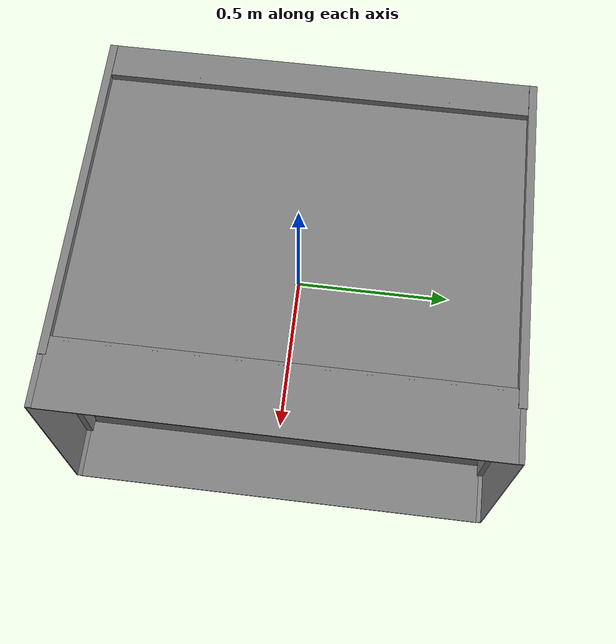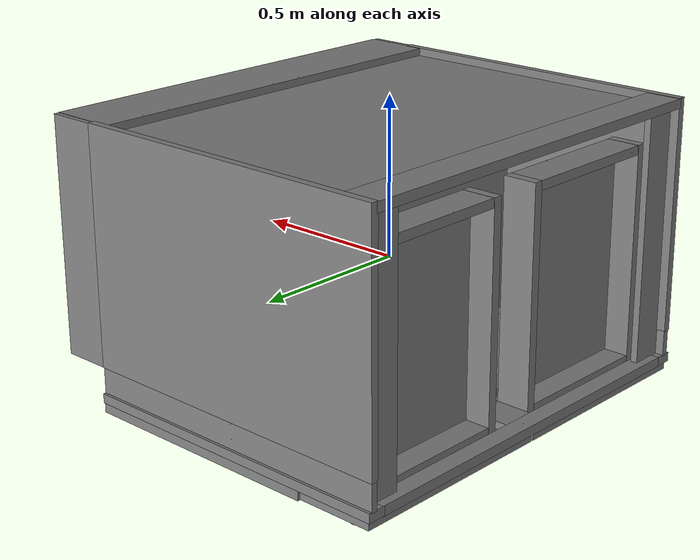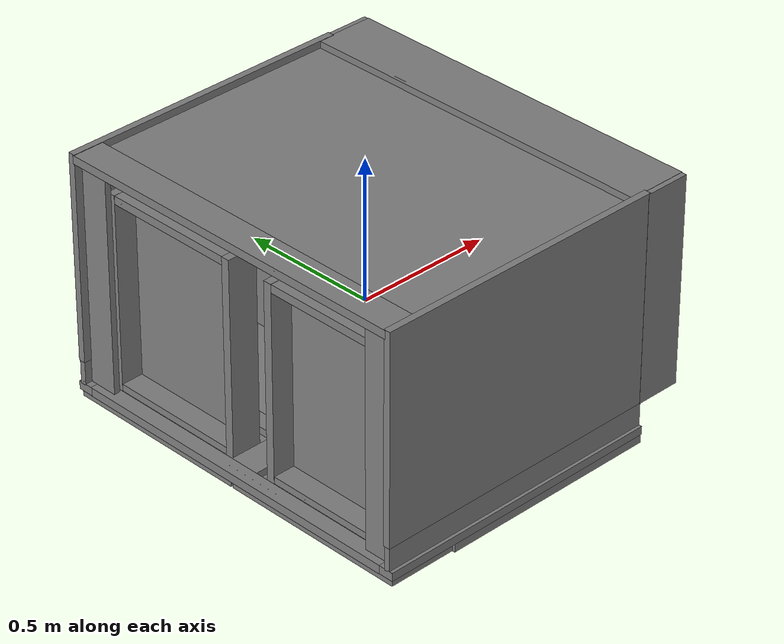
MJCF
<mujoco model="partnet_190cb7264781df604da5feafe6f1c8fc">
    <compiler angle="radian" />
    <size njmax="500" nconmax="100" />
    <asset>
        <mesh name="convex-65" file="convex-65.stl" />
        <mesh name="convex-67" file="convex-67.stl" />
        <mesh name="convex-69" file="convex-69.stl" />
        <mesh name="convex-68" file="convex-68.stl" />
        <mesh name="convex-59" file="convex-59.stl" />
        <mesh name="convex-61" file="convex-61.stl" />
        <mesh name="convex-63" file="convex-63.stl" />
        <mesh name="convex-62" file="convex-62.stl" />
        <mesh name="convex-29" file="convex-29.stl" />
        <mesh name="convex-37" file="convex-37.stl" />
        <mesh name="convex-33" file="convex-33.stl" />
        <mesh name="convex-35" file="convex-35.stl" />
        <mesh name="convex-28" file="convex-28.stl" />
        <mesh name="convex-34" file="convex-34.stl" />
        <mesh name="convex-32" file="convex-32.stl" />
        <mesh name="convex-31" file="convex-31.stl" />
        <mesh name="convex-39" file="convex-39.stl" />
        <mesh name="convex-40" file="convex-40.stl" />
        <mesh name="convex-41" file="convex-41.stl" />
        <mesh name="convex-45" file="convex-45.stl" />
        <mesh name="convex-53" file="convex-53.stl" />
        <mesh name="convex-44" file="convex-44.stl" />
        <mesh name="convex-49" file="convex-49.stl" />
        <mesh name="convex-51" file="convex-51.stl" />
        <mesh name="convex-50" file="convex-50.stl" />
        <mesh name="convex-48" file="convex-48.stl" />
        <mesh name="convex-47" file="convex-47.stl" />
        <mesh name="convex-55" file="convex-55.stl" />
        <mesh name="convex-56" file="convex-56.stl" />
        <mesh name="convex-57" file="convex-57.stl" />
        <mesh name="convex-25" file="convex-25.stl" />
        <mesh name="convex-70" file="convex-70.stl" />
        <mesh name="convex-12" file="convex-12.stl" />
        <mesh name="convex-11" file="convex-11.stl" />
        <mesh name="convex-16" file="convex-16.stl" />
        <mesh name="convex-15" file="convex-15.stl" />
        <mesh name="convex-18" file="convex-18.stl" />
        <mesh name="convex-19" file="convex-19.stl" />
        <mesh name="convex-24" file="convex-24.stl" />
        <mesh name="convex-7" file="convex-7.stl" />
        <mesh name="convex-8" file="convex-8.stl" />
        <mesh name="convex-4" file="convex-4.stl" />
        <mesh name="convex-9" file="convex-9.stl" />
        <mesh name="convex-6" file="convex-6.stl" />
        <mesh name="convex-5" file="convex-5.stl" />
        <mesh name="convex-3" file="convex-3.stl" />
        <mesh name="convex-23" file="convex-23.stl" />
        <mesh name="convex-22" file="convex-22.stl" />
        <mesh name="convex-13" file="convex-13.stl" />
        <mesh name="convex-17" file="convex-17.stl" />
        <mesh name="convex-21" file="convex-21.stl" />
        <mesh name="convex-20" file="convex-20.stl" />
    </asset>
    <worldbody>
        <geom quat="0.5 0.5 -0.5 -0.5" type="mesh" mesh="convex-25" />
        <geom quat="0.5 0.5 -0.5 -0.5" type="mesh" mesh="convex-70" />
        <geom quat="0.5 0.5 -0.5 -0.5" type="mesh" mesh="convex-12" />
        <geom quat="0.5 0.5 -0.5 -0.5" type="mesh" mesh="convex-11" />
        <geom quat="0.5 0.5 -0.5 -0.5" type="mesh" mesh="convex-16" />
        <geom quat="0.5 0.5 -0.5 -0.5" type="mesh" mesh="convex-15" />
        <geom quat="0.5 0.5 -0.5 -0.5" type="mesh" mesh="convex-18" />
        <geom quat="0.5 0.5 -0.5 -0.5" type="mesh" mesh="convex-19" />
        <geom quat="0.5 0.5 -0.5 -0.5" type="mesh" mesh="convex-24" />
        <geom quat="0.5 0.5 -0.5 -0.5" type="mesh" mesh="convex-7" />
        <geom quat="0.5 0.5 -0.5 -0.5" type="mesh" mesh="convex-8" />
        <geom quat="0.5 0.5 -0.5 -0.5" type="mesh" mesh="convex-4" />
        <geom quat="0.5 0.5 -0.5 -0.5" type="mesh" mesh="convex-9" />
        <geom quat="0.5 0.5 -0.5 -0.5" type="mesh" mesh="convex-6" />
        <geom quat="0.5 0.5 -0.5 -0.5" type="mesh" mesh="convex-5" />
        <geom quat="0.5 0.5 -0.5 -0.5" type="mesh" mesh="convex-3" />
        <geom quat="0.5 0.5 -0.5 -0.5" type="mesh" mesh="convex-23" />
        <geom quat="0.5 0.5 -0.5 -0.5" type="mesh" mesh="convex-22" />
        <geom quat="0.5 0.5 -0.5 -0.5" type="mesh" mesh="convex-13" />
        <geom quat="0.5 0.5 -0.5 -0.5" type="mesh" mesh="convex-17" />
        <geom quat="0.5 0.5 -0.5 -0.5" type="mesh" mesh="convex-21" />
        <geom quat="0.5 0.5 -0.5 -0.5" type="mesh" mesh="convex-20" />
        <body name="link_0" pos="-0.411765 -0.668161 -0.500258" quat="0.5 0.5 -0.5 -0.5">
            <inertial pos="-0.32929 0.0902366 -0.513415" quat="0.705843 -0.00566432 -0.00625225 0.708318" mass="21.4575" diaginertia="2.03334 1.16583 0.87382" />
            <joint name="joint_0" pos="0 0 0" axis="0 1 0" limited="true" range="0 1.5708" />
            <geom pos="-0.668161 0.500258 -0.411765" type="mesh" mesh="convex-65" />
            <geom pos="-0.668161 0.500258 -0.411765" type="mesh" mesh="convex-67" />
            <geom pos="-0.668161 0.500258 -0.411765" type="mesh" mesh="convex-69" />
            <geom pos="-0.668161 0.500258 -0.411765" type="mesh" mesh="convex-68" />
        </body>
        <body name="link_1" pos="-0.409826 0.681307 -0.500258" quat="0.5 0.5 -0.5 -0.5">
            <inertial pos="0.331951 0.0902366 -0.511476" quat="0.70831 0.00620442 0.00561664 0.705852" mass="21.4575" diaginertia="2.03311 1.16583 0.873593" />
            <joint name="joint_1" pos="0 0 0" axis="0 -1 0" limited="true" range="0 1.5708" />
            <geom pos="0.681307 0.500258 -0.409826" type="mesh" mesh="convex-59" />
            <geom pos="0.681307 0.500258 -0.409826" type="mesh" mesh="convex-61" />
            <geom pos="0.681307 0.500258 -0.409826" type="mesh" mesh="convex-63" />
            <geom pos="0.681307 0.500258 -0.409826" type="mesh" mesh="convex-62" />
        </body>
        <body name="link_2" pos="0.416492 -0.321637 0.407848" quat="0.5 0.5 -0.5 -0.5">
            <inertial pos="0.0190409 -0.573552 0.837077" quat="0.504432 0.495578 -0.495796 0.504121" mass="15.4918" diaginertia="1.71561 1.14569 0.64144" />
            <joint name="joint_2" pos="0 0 0" axis="0 0 1" type="slide" limited="true" range="0 0.64" />
            <geom pos="-0.321637 -0.407848 0.416492" type="mesh" mesh="convex-29" />
            <geom pos="-0.321637 -0.407848 0.416492" type="mesh" mesh="convex-37" />
            <geom pos="-0.321637 -0.407848 0.416492" type="mesh" mesh="convex-33" />
            <geom pos="-0.321637 -0.407848 0.416492" type="mesh" mesh="convex-35" />
            <geom pos="-0.321637 -0.407848 0.416492" type="mesh" mesh="convex-28" />
            <geom pos="-0.321637 -0.407848 0.416492" type="mesh" mesh="convex-34" />
            <geom pos="-0.321637 -0.407848 0.416492" type="mesh" mesh="convex-32" />
            <geom pos="-0.321637 -0.407848 0.416492" type="mesh" mesh="convex-31" />
            <geom pos="-0.321637 -0.407848 0.416492" type="mesh" mesh="convex-39" />
            <geom pos="-0.321637 -0.407848 0.416492" type="mesh" mesh="convex-40" />
            <geom pos="-0.321637 -0.407848 0.416492" type="mesh" mesh="convex-41" />
        </body>
        <body name="link_3" pos="0.416492 0.364208 0.405967" quat="0.5 0.5 -0.5 -0.5">
            <inertial pos="0.011502 -0.57165 0.837084" quat="0.504433 0.495578 -0.495783 0.504131" mass="15.49" diaginertia="1.71542 1.14556 0.641346" />
            <joint name="joint_3" pos="0 0 0" axis="0 0 1" type="slide" limited="true" range="0 0.64" />
            <geom pos="0.364208 -0.405967 0.416492" type="mesh" mesh="convex-45" />
            <geom pos="0.364208 -0.405967 0.416492" type="mesh" mesh="convex-53" />
            <geom pos="0.364208 -0.405967 0.416492" type="mesh" mesh="convex-44" />
            <geom pos="0.364208 -0.405967 0.416492" type="mesh" mesh="convex-49" />
            <geom pos="0.364208 -0.405967 0.416492" type="mesh" mesh="convex-51" />
            <geom pos="0.364208 -0.405967 0.416492" type="mesh" mesh="convex-50" />
            <geom pos="0.364208 -0.405967 0.416492" type="mesh" mesh="convex-48" />
            <geom pos="0.364208 -0.405967 0.416492" type="mesh" mesh="convex-47" />
            <geom pos="0.364208 -0.405967 0.416492" type="mesh" mesh="convex-55" />
            <geom pos="0.364208 -0.405967 0.416492" type="mesh" mesh="convex-56" />
            <geom pos="0.364208 -0.405967 0.416492" type="mesh" mesh="convex-57" />
        </body>
    </worldbody>
</mujoco>
